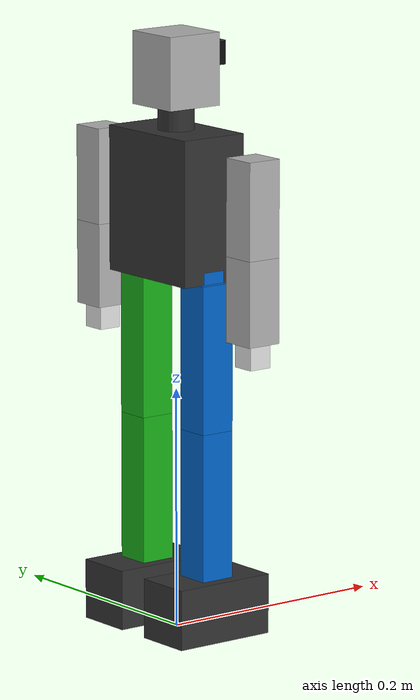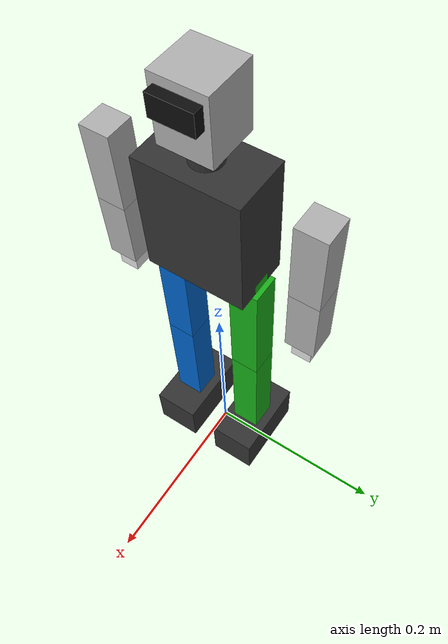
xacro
<?xml version="1.0"?>
<robot name="humanoid_robot" xmlns:xacro="http://www.ros.org/wiki/xacro">

  <!-- ── Include materials ─────────────────────────────── -->
  <xacro:include filename="$(find my_robot_description)/urdf/materials.xacro"/>

  <!-- Link lengths (meters) -->
  <xacro:property name="thigh_len"    value="0.1225"/>
  <xacro:property name="shank_len"    value="0.1230"/>
  <xacro:property name="foot_height"  value="0.0500"/>
  <xacro:property name="foot_len"     value="0.0900"/>  <!-- foot length front-back -->
  <xacro:property name="foot_width"   value="0.0500"/>  <!-- foot width left-right -->
  <xacro:property name="torso_height" value="0.1200"/>
  <xacro:property name="torso_width"  value="0.1000"/>
  <xacro:property name="torso_depth"  value="0.0600"/>

  <!-- Hip geometry -->
  <xacro:property name="hip_offset_y"  value="0.0400"/>  <!-- 40mm from center to hip joint -->
  <xacro:property name="hip_bracket_w" value="0.0200"/>

  <!-- Arm geometry -->
  <xacro:property name="upper_arm_len" value="0.0800"/>
  <xacro:property name="forearm_len"   value="0.0700"/>
  <xacro:property name="shoulder_offset_y" value="0.0500"/>
  <xacro:property name="shoulder_offset_z" value="0.0500"/>  <!-- up from torso top -->

  <!-- Head geometry -->
  <xacro:property name="head_height" value="0.0600"/>
  <xacro:property name="head_width"  value="0.0500"/>
  <xacro:property name="neck_height" value="0.0200"/>

  <!-- Link visual thickness (for box representations) -->
  <xacro:property name="link_thickness" value="0.0300"/>

  <xacro:property name="foot_clearance" value="0.001"/>

  <!-- Servo / joint mass estimates (kg) -->
  <xacro:property name="torso_mass"   value="0.400"/>
  <xacro:property name="thigh_mass"   value="0.120"/>
  <xacro:property name="shank_mass"   value="0.100"/>
  <xacro:property name="foot_mass"    value="0.060"/>
  <xacro:property name="upper_arm_m"  value="0.080"/>
  <xacro:property name="forearm_m"    value="0.060"/>
  <xacro:property name="head_mass"    value="0.100"/>
  <xacro:property name="bracket_mass" value="0.030"/>

  <!-- ============================================================
       XACRO MACROS
       ============================================================ -->

  <!-- Inertia macro for a solid box (kg, meters) -->
  <xacro:macro name="box_inertia" params="m x y z ox:=0 oy:=0 oz:=0">
    <inertial>
      <origin xyz="${ox} ${oy} ${oz}" rpy="0 0 0"/>
      <mass value="${m}"/>
      <inertia
        ixx="${m*(y*y+z*z)/12}" ixy="0" ixz="0"
        iyy="${m*(x*x+z*z)/12}" iyz="0"
        izz="${m*(x*x+y*y)/12}"/>
    </inertial>
  </xacro:macro>

  <!-- Inertia macro for a solid cylinder (kg, meters) -->
  <xacro:macro name="cylinder_inertia" params="m r l">
    <inertial>
      <mass value="${m}"/>
      <inertia
        ixx="${m*(3*r*r+l*l)/12}" ixy="0" ixz="0"
        iyy="${m*(3*r*r+l*l)/12}" iyz="0"
        izz="${m*r*r/2}"/>
    </inertial>
  </xacro:macro>

  <xacro:macro name="leg" params="prefix reflect">

    <!-- ── HIP ROLL joint ─────────────────────────────── -->
    <!-- Connects torso to hip bracket; rotation in frontal plane (X axis) -->
    <joint name="${prefix}_hip_roll" type="revolute">
      <parent link="torso"/>
      <child  link="${prefix}_hip_bracket"/>
      <!-- Origin: at hip joint location, offset left/right from torso center -->
      <origin xyz="0 ${reflect * hip_offset_y} ${-torso_height/2}" rpy="0 0 0"/>
      <axis xyz="1 0 0"/>
      <!-- Limits in radians: 0° to 170° -->
      <limit lower="${-170.0*pi/180}" upper="${170.0*pi/180}" effort="10" velocity="3.0"/>
      <dynamics damping="0.1" friction="0.1"/>
    </joint>

    <link name="${prefix}_hip_bracket">
      <xacro:box_inertia m="${bracket_mass}"
        x="${hip_bracket_w}" y="${hip_bracket_w}" z="${hip_bracket_w}"/>
      <visual>
        <geometry><box size="${hip_bracket_w} ${hip_bracket_w} ${hip_bracket_w}"/></geometry>
        <material name="${'blue' if prefix == 'r' else 'green'}"/>
      </visual>
      <collision>
        <geometry><box size="${hip_bracket_w} ${hip_bracket_w} ${hip_bracket_w}"/></geometry>
      </collision>
    </link>

    <!-- ── HIP PITCH joint ────────────────────────────── -->
    <!-- Rotation in sagittal plane (Y axis); moves thigh forward/back -->
    <joint name="${prefix}_hip_pitch" type="revolute">
      <parent link="${prefix}_hip_bracket"/>
      <child  link="${prefix}_thigh"/>
      <origin xyz="0 0 0" rpy="0 0 0"/>
      <axis xyz="0 1 0"/>
      <limit lower="${-170.0*pi/180}" upper="${170.0*pi/180}" effort="10" velocity="3.0"/>
      <dynamics damping="0.1" friction="0.1"/>
    </joint>

    <!-- Thigh link — box representing L1 = 122.5mm -->
    <link name="${prefix}_thigh">
      <xacro:box_inertia m="${thigh_mass}"
        x="${link_thickness}" y="${link_thickness}" z="${thigh_len}"
        oz="${-thigh_len/2}"/>
      <visual>
        <!-- Offset so top of box is at joint origin (thigh hangs downward) -->
        <origin xyz="0 0 ${-thigh_len/2}" rpy="0 0 0"/>
        <geometry><box size="${link_thickness} ${link_thickness} ${thigh_len}"/></geometry>
        <material name="${'blue' if prefix == 'r' else 'green'}"/>
      </visual>
      <collision>
        <origin xyz="0 0 ${-thigh_len/2}" rpy="0 0 0"/>
        <geometry><box size="${link_thickness} ${link_thickness} ${thigh_len}"/></geometry>
      </collision>
    </link>

    <!-- ── KNEE PITCH joint ───────────────────────────── -->
    <!-- At bottom of thigh, rotates shank forward/back -->
    <joint name="${prefix}_knee_pitch" type="revolute">
      <parent link="${prefix}_thigh"/>
      <child  link="${prefix}_shank"/>
      <origin xyz="0 0 ${-thigh_len}" rpy="0 0 0"/>
      <axis xyz="0 1 0"/>
      <limit lower="${-170.0*pi/180}" upper="${170.0*pi/180}" effort="10" velocity="3.0"/>
      <dynamics damping="0.1" friction="0.1"/>
    </joint>

    <!-- Shank link — box representing L2 = 123.0mm -->
    <link name="${prefix}_shank">
      <xacro:box_inertia m="${shank_mass}"
        x="${link_thickness}" y="${link_thickness}" z="${shank_len}"
        oz="${-shank_len/2}"/>
      <visual>
        <origin xyz="0 0 ${-shank_len/2}" rpy="0 0 0"/>
        <geometry><box size="${link_thickness} ${link_thickness} ${shank_len}"/></geometry>
        <material name="${'blue' if prefix == 'r' else 'green'}"/>
      </visual>
      <collision>
        <origin xyz="0 0 ${-shank_len/2}" rpy="0 0 0"/>
        <geometry><box size="${link_thickness} ${link_thickness} ${shank_len}"/></geometry>
      </collision>
    </link>

    <!-- ── ANKLE PITCH joint ──────────────────────────── -->
    <!-- At bottom of shank; tilts foot forward/back -->
    <joint name="${prefix}_ankle_pitch" type="revolute">
      <parent link="${prefix}_shank"/>
      <child  link="${prefix}_ankle_bracket"/>
      <origin xyz="0 0 ${-shank_len}" rpy="0 0 0"/>
      <axis xyz="0 1 0"/>
      <limit lower="${-30.0*pi/180}" upper="${80.0*pi/180}" effort="10" velocity="3.0"/>
      <dynamics damping="0.1" friction="0.1"/>
    </joint>

    <link name="${prefix}_ankle_bracket">
      <xacro:box_inertia m="${bracket_mass}"
        x="${hip_bracket_w}" y="${hip_bracket_w}" z="${hip_bracket_w}"/>
      <visual>
        <geometry><box size="${hip_bracket_w} ${hip_bracket_w} ${hip_bracket_w}"/></geometry>
        <material name="orange"/>
      </visual>
      <collision>
        <geometry><box size="${hip_bracket_w} ${hip_bracket_w} ${hip_bracket_w}"/></geometry>
      </collision>
    </link>

    <!-- ── ANKLE ROLL joint ───────────────────────────── -->
    <!-- Tilts foot left/right; mirror sign between legs -->
    <joint name="${prefix}_ankle_roll" type="revolute">
      <parent link="${prefix}_ankle_bracket"/>
      <child  link="${prefix}_foot"/>
      <origin xyz="0 0 0" rpy="0 0 0"/>
      <axis xyz="1 0 0"/>
      <limit lower="${-65.0*pi/180}" upper="${65.0*pi/180}" effort="10" velocity="3.0"/>
      <dynamics damping="0.1" friction="0.1"/>
    </joint>

    <!-- Foot link — flat box representing the foot plate -->
    <link name="${prefix}_foot">
      <xacro:box_inertia m="${foot_mass}"
        x="${foot_len}" y="${foot_width}" z="${foot_height}"
        oz="${-foot_height/2}"/>
      <visual>
        <origin xyz="0 0 ${-foot_height/2}" rpy="0 0 0"/>
        <geometry><box size="${foot_len} ${foot_width} ${foot_height}"/></geometry>
        <material name="dark_grey"/>
      </visual>
      <collision>
        <origin xyz="0 0 ${-foot_height/2}" rpy="0 0 0"/>
        <geometry><box size="${foot_len} ${foot_width} ${foot_height}"/></geometry>
      </collision>
    </link>

  </xacro:macro>  <!-- end leg macro -->

  <xacro:macro name="arm" params="prefix reflect">

    <!-- ── SHOULDER PITCH joint ───────────────────────── -->
    <joint name="${prefix}_shoulder_pitch" type="revolute">
      <parent link="torso"/>
      <child  link="${prefix}_shoulder_link"/>
      <origin xyz="0 ${reflect * (torso_width/2 + shoulder_offset_y)} ${shoulder_offset_z}" rpy="0 0 0"/>
      <axis xyz="0 1 0"/>
      <limit lower="${-180.0*pi/180}" upper="${180.0*pi/180}" effort="5" velocity="3.0"/>
      <dynamics damping="0.05" friction="0.05"/>
    </joint>

    <!-- Dummy link required by URDF between two co-located revolute joints.
         Must have non-zero inertia or the physics engine will reject it. -->
    <link name="${prefix}_shoulder_link">
      <inertial>
        <mass value="0.001"/>
        <inertia ixx="1e-6" ixy="0" ixz="0" iyy="1e-6" iyz="0" izz="1e-6"/>
      </inertial>
    </link>

    <!-- ── SHOULDER ROLL joint ────────────────────────── -->
    <!-- Co-located with shoulder_pitch: origin is (0 0 0) relative to shoulder_link -->
    <joint name="${prefix}_shoulder_roll" type="revolute">
      <parent link="${prefix}_shoulder_link"/>
      <child  link="${prefix}_upper_arm"/>
      <origin xyz="0 0 0" rpy="0 0 0"/>
      <axis xyz="1 0 0"/>
      <limit lower="${-180.0*pi/180}" upper="${180.0*pi/180}" effort="5" velocity="3.0"/>
      <dynamics damping="0.05" friction="0.05"/>
    </joint>

    <link name="${prefix}_upper_arm">
      <xacro:box_inertia m="${upper_arm_m}"
        x="${link_thickness}" y="${link_thickness}" z="${upper_arm_len}"
        oz="${-upper_arm_len/2}"/>
      <visual>
        <origin xyz="0 0 ${-upper_arm_len/2}" rpy="0 0 0"/>
        <geometry><box size="${link_thickness} ${link_thickness} ${upper_arm_len}"/></geometry>
        <material name="light_grey"/>
      </visual>
      <collision>
        <origin xyz="0 0 ${-upper_arm_len/2}" rpy="0 0 0"/>
        <geometry><box size="${link_thickness} ${link_thickness} ${upper_arm_len}"/></geometry>
      </collision>
    </link>

    <!-- ── ELBOW ROLL joint ───────────────────────────── -->
    <joint name="${prefix}_elbow_roll" type="revolute">
      <parent link="${prefix}_upper_arm"/>
      <child  link="${prefix}_forearm"/>
      <origin xyz="0 0 ${-upper_arm_len}" rpy="0 0 0"/>
      <axis xyz="1 0 0"/>
      <limit lower="${-180.0*pi/180}" upper="${180.0*pi/180}" effort="5" velocity="3.0"/>
      <dynamics damping="0.05" friction="0.05"/>
    </joint>

    <link name="${prefix}_forearm">
      <xacro:box_inertia m="${forearm_m}"
        x="${link_thickness}" y="${link_thickness}" z="${forearm_len}"
        oz="${-forearm_len/2}"/>
      <visual>
        <origin xyz="0 0 ${-forearm_len/2}" rpy="0 0 0"/>
        <geometry><box size="${link_thickness} ${link_thickness} ${forearm_len}"/></geometry>
        <material name="light_grey"/>
      </visual>
      <collision>
        <origin xyz="0 0 ${-forearm_len/2}" rpy="0 0 0"/>
        <geometry><box size="${link_thickness} ${link_thickness} ${forearm_len}"/></geometry>
      </collision>
    </link>

    <!-- ── WRIST (fixed) ─────────────────────────────── -->
    <joint name="${prefix}_wrist_fixed" type="fixed">
      <parent link="${prefix}_forearm"/>
      <child  link="${prefix}_hand"/>
      <origin xyz="0 0 ${-forearm_len}" rpy="0 0 0"/>
    </joint>

    <link name="${prefix}_hand">
      <xacro:box_inertia m="0.030" x="0.02" y="0.02" z="0.04"/>
      <visual>
        <geometry><box size="0.02 0.02 0.04"/></geometry>
        <material name="white"/>
      </visual>
      <collision>
        <geometry><box size="0.02 0.02 0.04"/></geometry>
      </collision>
    </link>

  </xacro:macro>  <!-- end arm macro -->

  <!-- ============================================================
       ROBOT LINKS AND JOINTS
       ============================================================ -->

  <!-- ── WORLD → BASE fixed joint ──────────────────────── -->

  <!-- ── BASE LINK ─────────────────────────────────────── -->
  <!-- Reference frame at ground level, between feet -->
  <link name="base_link">
    <xacro:box_inertia m="0.001" x="0.001" y="0.001" z="0.001"/>
  </link>

  <!-- base_link → torso -->
  <joint name="base_to_torso" type="fixed">
    <parent link="base_link"/>
    <child  link="torso"/>
    <!-- Lift torso up: foot_height + shank + thigh + half torso -->
    <origin xyz="0 0 ${foot_height + shank_len + thigh_len + torso_height/2}" rpy="0 0 0"/>
  </joint>

  <!-- ── TORSO ──────────────────────────────────────────── -->
  <link name="torso">
    <xacro:box_inertia m="${torso_mass}"
      x="${torso_depth}" y="${torso_width}" z="${torso_height}"/>
    <visual>
      <geometry><box size="${torso_depth} ${torso_width} ${torso_height}"/></geometry>
      <material name="dark_grey"/>
    </visual>
    <collision>
      <geometry><box size="${torso_depth} ${torso_width} ${torso_height}"/></geometry>
    </collision>
  </link>

  <!-- ── HEAD ASSEMBLY ─────────────────────────────────── -->
  <joint name="neck_fixed" type="fixed">
    <parent link="torso"/>
    <child  link="neck"/>
    <origin xyz="0 0 ${torso_height/2 + neck_height/2}" rpy="0 0 0"/>
  </joint>

  <link name="neck">
    <xacro:cylinder_inertia m="0.020" r="0.015" l="${neck_height}"/>
    <visual>
      <geometry><cylinder radius="0.015" length="${neck_height}"/></geometry>
      <material name="dark_grey"/>
    </visual>
    <collision>
      <geometry><cylinder radius="0.015" length="${neck_height}"/></geometry>
    </collision>
  </link>

  <!-- HEAD YAW -->
  <joint name="head_yaw" type="revolute">
    <parent link="neck"/>
    <child  link="head"/>
    <origin xyz="0 0 ${neck_height/2 + head_height/2}" rpy="0 0 0"/>
    <axis xyz="0 0 1"/>
    <limit lower="0.0" upper="${180.0*pi/180}" effort="2" velocity="3.0"/>
    <dynamics damping="0.05" friction="0.05"/>
  </joint>

  <link name="head">
    <xacro:box_inertia m="${head_mass}"
      x="${head_width}" y="${head_width}" z="${head_height}"/>
    <visual>
      <geometry><box size="${head_width} ${head_width} ${head_height}"/></geometry>
      <material name="light_grey"/>
    </visual>
    <collision>
      <geometry><box size="${head_width} ${head_width} ${head_height}"/></geometry>
    </collision>
  </link>

  <!-- CAMERA PITCH -->
  <joint name="camera_pitch" type="revolute">
    <parent link="head"/>
    <child  link="camera_link"/>
    <origin xyz="${head_width/2} 0 ${head_height*0.2}" rpy="0 0 0"/>
    <axis xyz="0 1 0"/>
    <limit lower="0.0" upper="${180.0*pi/180}" effort="1" velocity="3.0"/>
    <dynamics damping="0.02" friction="0.02"/>
  </joint>

  <link name="camera_link">
    <xacro:box_inertia m="0.020" x="0.02" y="0.04" z="0.02"/>
    <visual>
      <geometry><box size="0.02 0.04 0.02"/></geometry>
      <material name="black"/>
    </visual>
    <collision>
      <geometry><box size="0.02 0.04 0.02"/></geometry>
    </collision>
  </link>

  <!-- ── INSTANTIATE LEGS ───────────────────────────────── -->
  <!-- Right leg: reflect=1  (Y positive = right in robot frame) -->
  <xacro:leg prefix="r" reflect="-1"/>
  <!-- Left leg:  reflect=-1 (Y negative = left in robot frame) -->
  <xacro:leg prefix="l" reflect="1"/>

  <!-- ── INSTANTIATE ARMS ───────────────────────────────── -->
  <xacro:arm prefix="r" reflect="-1"/>
  <xacro:arm prefix="l" reflect="1"/>

  <ros2_control name="GazeboSystem" type="system">

    <hardware>
      <plugin>gz_ros2_control/GazeboSimSystem</plugin>
    </hardware>

    <!-- ── RIGHT LEG ─────────────────────────────────────────
         initial_value required on ALL state_interfaces in Jazzy:
         hardware_interface::stod() crashes on empty/missing params.
    -->
    <joint name="r_hip_roll">
      <command_interface name="position"/>
      <command_interface name="effort"/>
      <state_interface name="position">
        <param name="initial_value">0.0</param>
      </state_interface>
      <state_interface name="velocity">
        <param name="initial_value">0.0</param>
      </state_interface>
    </joint>

    <joint name="r_hip_pitch">
      <command_interface name="position"/>
      <command_interface name="effort"/>
      <state_interface name="position">
        <param name="initial_value">0.0</param>
      </state_interface>
      <state_interface name="velocity">
        <param name="initial_value">0.0</param>
      </state_interface>
    </joint>

    <joint name="r_knee_pitch">
      <command_interface name="position"/>
      <command_interface name="effort"/>
      <state_interface name="position">
        <param name="initial_value">0.0</param>
      </state_interface>
      <state_interface name="velocity">
        <param name="initial_value">0.0</param>
      </state_interface>
    </joint>

    <joint name="r_ankle_pitch">
      <command_interface name="position"/>
      <command_interface name="effort"/>
      <state_interface name="position">
        <param name="initial_value">0.0</param>
      </state_interface>
      <state_interface name="velocity">
        <param name="initial_value">0.0</param>
      </state_interface>
    </joint>

    <joint name="r_ankle_roll">
      <command_interface name="position"/>
      <command_interface name="effort"/>
      <state_interface name="position">
        <param name="initial_value">0.0</param>
      </state_interface>
      <state_interface name="velocity">
        <param name="initial_value">0.0</param>
      </state_interface>
    </joint>

    <!-- ── LEFT LEG ──────────────────────────────────────── -->
    <joint name="l_hip_roll">
      <command_interface name="position"/>
      <command_interface name="effort"/>
      <state_interface name="position">
        <param name="initial_value">0.0</param>
      </state_interface>
      <state_interface name="velocity">
        <param name="initial_value">0.0</param>
      </state_interface>
    </joint>

    <joint name="l_hip_pitch">
      <command_interface name="position"/>
      <command_interface name="effort"/>
      <state_interface name="position">
        <param name="initial_value">0.0</param>
      </state_interface>
      <state_interface name="velocity">
        <param name="initial_value">0.0</param>
      </state_interface>
    </joint>

    <joint name="l_knee_pitch">
      <command_interface name="position"/>
      <command_interface name="effort"/>
      <state_interface name="position">
        <param name="initial_value">0.0</param>
      </state_interface>
      <state_interface name="velocity">
        <param name="initial_value">0.0</param>
      </state_interface>
    </joint>

    <joint name="l_ankle_pitch">
      <command_interface name="position"/>
      <command_interface name="effort"/>
      <state_interface name="position">
        <param name="initial_value">0.0</param>
      </state_interface>
      <state_interface name="velocity">
        <param name="initial_value">0.0</param>
      </state_interface>
    </joint>

    <joint name="l_ankle_roll">
      <command_interface name="position"/>
      <command_interface name="effort"/>
      <state_interface name="position">
        <param name="initial_value">0.0</param>
      </state_interface>
      <state_interface name="velocity">
        <param name="initial_value">0.0</param>
      </state_interface>
    </joint>

    <!-- ── RIGHT ARM ─────────────────────────────────────── -->
    <joint name="r_shoulder_pitch">
      <command_interface name="position"/>
      <command_interface name="effort"/>
      <state_interface name="position">
        <param name="initial_value">0.0</param>
      </state_interface>
      <state_interface name="velocity">
        <param name="initial_value">0.0</param>
      </state_interface>
    </joint>

    <joint name="r_shoulder_roll">
      <command_interface name="position"/>
      <command_interface name="effort"/>
      <state_interface name="position">
        <param name="initial_value">0.0</param>
      </state_interface>
      <state_interface name="velocity">
        <param name="initial_value">0.0</param>
      </state_interface>
    </joint>

    <joint name="r_elbow_roll">
      <command_interface name="position"/>
      <command_interface name="effort"/>
      <state_interface name="position">
        <param name="initial_value">0.0</param>
      </state_interface>
      <state_interface name="velocity">
        <param name="initial_value">0.0</param>
      </state_interface>
    </joint>

    <!-- ── LEFT ARM ──────────────────────────────────────── -->
    <joint name="l_shoulder_pitch">
      <command_interface name="position"/>
      <command_interface name="effort"/>
      <state_interface name="position">
        <param name="initial_value">0.0</param>
      </state_interface>
      <state_interface name="velocity">
        <param name="initial_value">0.0</param>
      </state_interface>
    </joint>

    <joint name="l_shoulder_roll">
      <command_interface name="position"/>
      <command_interface name="effort"/>
      <state_interface name="position">
        <param name="initial_value">0.0</param>
      </state_interface>
      <state_interface name="velocity">
        <param name="initial_value">0.0</param>
      </state_interface>
    </joint>

    <joint name="l_elbow_roll">
      <command_interface name="position"/>
      <command_interface name="effort"/>
      <state_interface name="position">
        <param name="initial_value">0.0</param>
      </state_interface>
      <state_interface name="velocity">
        <param name="initial_value">0.0</param>
      </state_interface>
    </joint>

    <!-- ── HEAD ──────────────────────────────────────────── -->
    <joint name="head_yaw">
      <command_interface name="position"/>
      <command_interface name="effort"/>
      <state_interface name="position">
        <param name="initial_value">0.0</param>
      </state_interface>
      <state_interface name="velocity">
        <param name="initial_value">0.0</param>
      </state_interface>
    </joint>

    <joint name="camera_pitch">
      <command_interface name="position"/>
      <command_interface name="effort"/>
      <state_interface name="position">
        <param name="initial_value">0.0</param>
      </state_interface>
      <state_interface name="velocity">
        <param name="initial_value">0.0</param>
      </state_interface>
    </joint>

  </ros2_control>
  <!-- ============================================================
       GAZEBO HARMONIC — simulation plugins
       ============================================================ -->
  <gazebo>
    <!-- gz_ros2_control plugin: loads controllers from controllers.yaml
         and connects them to the ros2_control hardware interfaces above. -->
    <plugin filename="libgz_ros2_control-system.so"
            name="gz_ros2_control::GazeboSimROS2ControlPlugin">
      <parameters>$(find my_robot_bringup)/config/controllers.yaml</parameters>
      <ros>
        <remapping>~/robot_description:=/robot_description</remapping>
      </ros>
    </plugin>
  </gazebo>

  <!-- Contact sensors on feet — used later for foot strike detection -->
  <!-- Commented out r_foot gazebo block. Original sensor and contact
       parameters preserved below for reference (inner XML comments removed
       to avoid nested-comment issues). -->

  <!-- GROUND-TRUTH odometry of base_link (validation only, not a real sensor). -->

  <!-- IMU sensor on base_link — matches real MPU6050 location -->
  <gazebo reference="base_link">
    <sensor name="imu_sensor" type="imu">
      <always_on>true</always_on>
      <update_rate>50</update_rate>
      <imu>
        <angular_velocity>
          <x><noise type="gaussian"><mean>0</mean><stddev>0.009</stddev></noise></x>
          <y><noise type="gaussian"><mean>0</mean><stddev>0.009</stddev></noise></y>
          <z><noise type="gaussian"><mean>0</mean><stddev>0.009</stddev></noise></z>
        </angular_velocity>
        <linear_acceleration>
          <x><noise type="gaussian"><mean>0</mean><stddev>0.065</stddev></noise></x>
          <y><noise type="gaussian"><mean>0</mean><stddev>0.065</stddev></noise></y>
          <z><noise type="gaussian"><mean>0</mean><stddev>0.065</stddev></noise></z>
        </linear_acceleration>
      </imu>
      <plugin filename="gz-sim-imu-system"
              name="gz::sim::systems::Imu"/>
    </sensor>
  </gazebo>

  <gazebo reference="r_foot">
    <collision><surface>
      <friction><ode><mu>1.0</mu><mu2>1.0</mu2></ode></friction>
      <contact><ode><kp>1e6</kp><kd>100</kd><min_depth>0.001</min_depth></ode></contact>
    </surface></collision>
  </gazebo>
  <gazebo reference="l_foot">
    <collision><surface>
      <friction><ode><mu>1.0</mu><mu2>1.0</mu2></ode></friction>
      <contact><ode><kp>1e6</kp><kd>100</kd><min_depth>0.001</min_depth></ode></contact>
    </surface></collision>
  </gazebo>
</robot>

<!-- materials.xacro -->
<robot xmlns:xacro="http://www.ros.org/wiki/xacro">

  <!-- ============================================================
       materials.xacro — RViz color definitions
       ============================================================ -->

  <material name="dark_grey">
    <color rgba="0.2 0.2 0.2 1.0"/>
  </material>

  <material name="light_grey">
    <color rgba="0.7 0.7 0.7 1.0"/>
  </material>

  <material name="white">
    <color rgba="0.9 0.9 0.9 1.0"/>
  </material>

  <material name="orange">
    <color rgba="1.0 0.5 0.0 1.0"/>
  </material>

  <material name="blue">
    <color rgba="0.0 0.4 0.8 1.0"/>
  </material>

  <material name="red">
    <color rgba="0.8 0.1 0.1 1.0"/>
  </material>

  <material name="green">
    <color rgba="0.1 0.7 0.1 1.0"/>
  </material>

  <material name="black">
    <color rgba="0.05 0.05 0.05 1.0"/>
  </material>

</robot>
